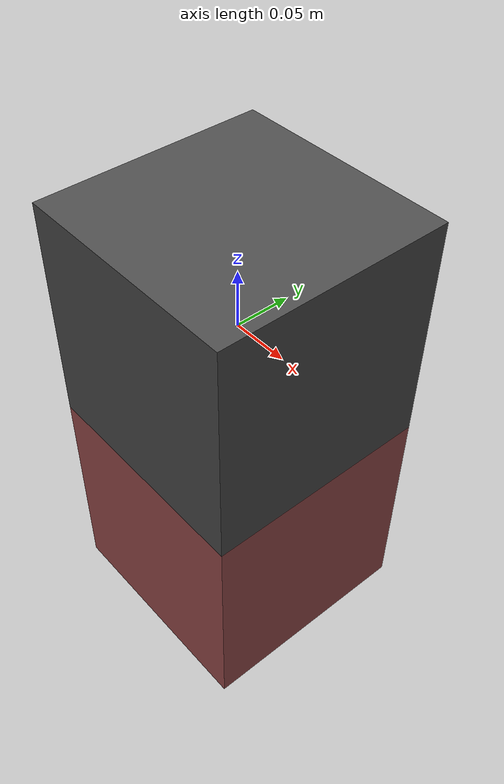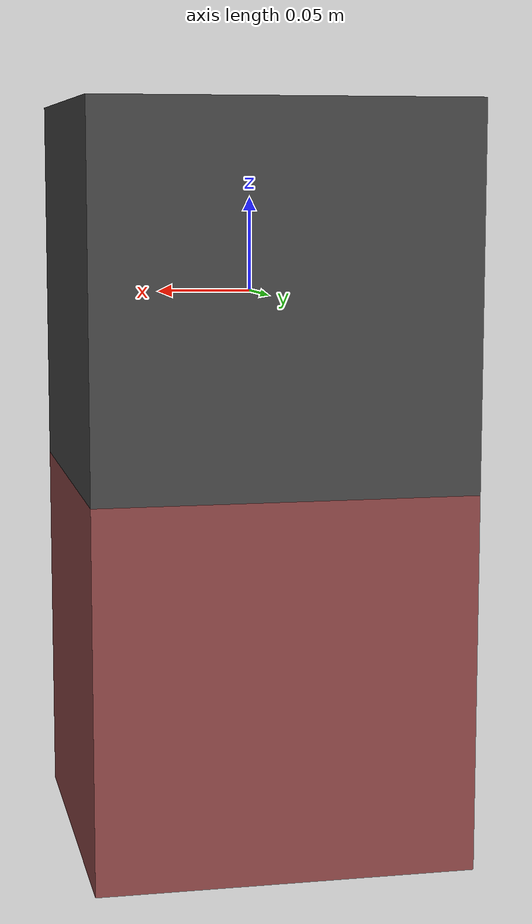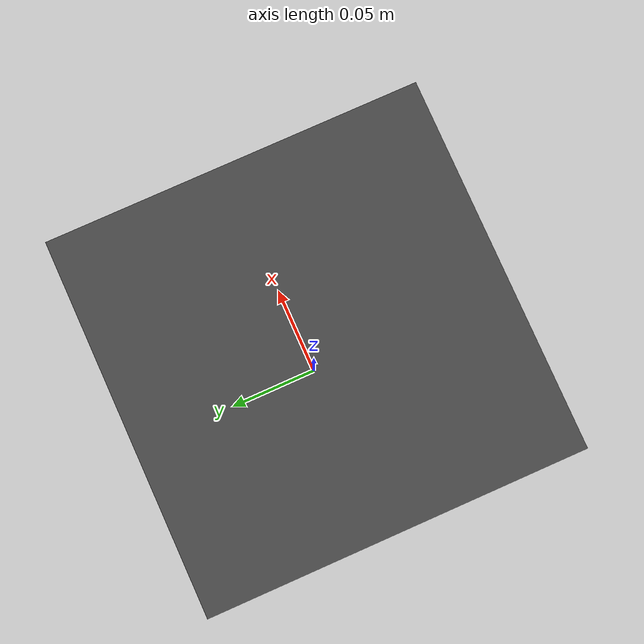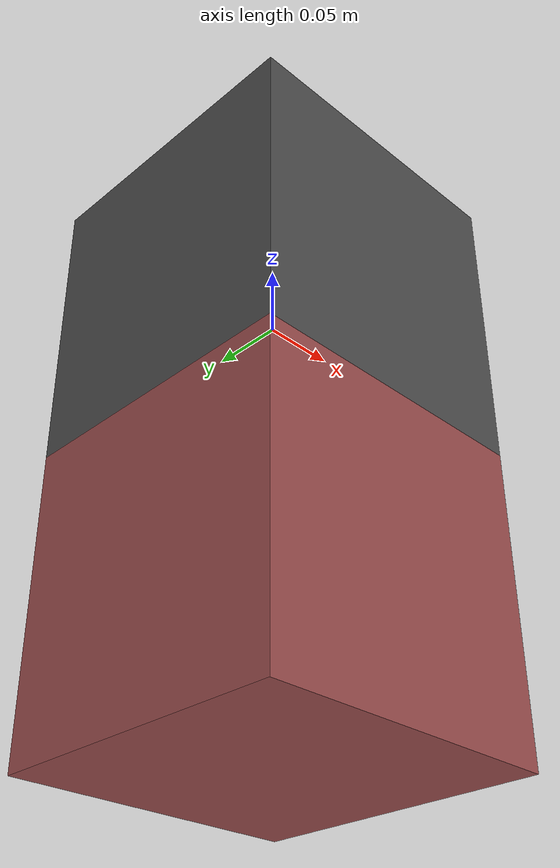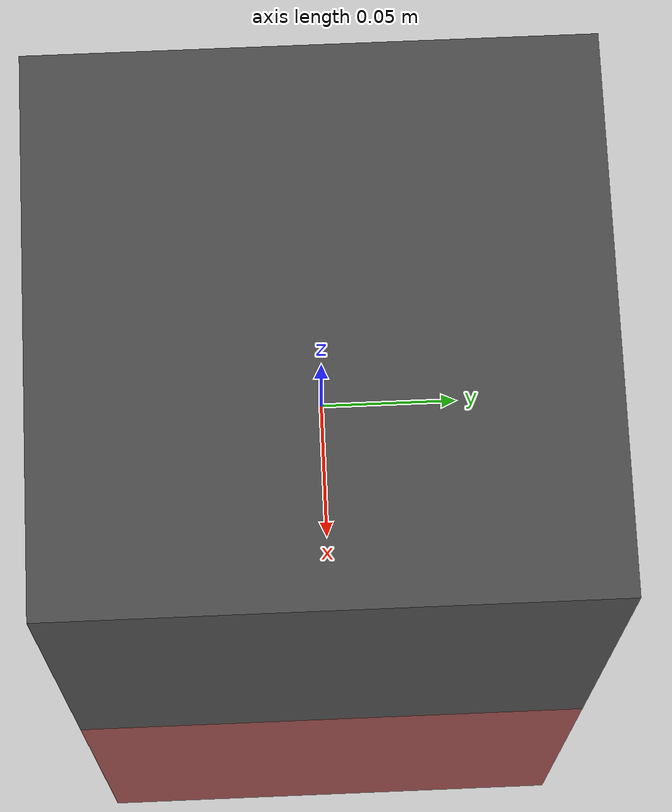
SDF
<?xml version="1.0"?>
<sdf version="1.7">
  <model name="simple_gripper">
    <pose>0 0 0 0 0 0</pose>
    <joint name="translate_joint" type="prismatic">
      <parent>world</parent>
      <child>body</child>
      <axis>
        <xyz expressed_in="__model__">0 1 0</xyz>
      </axis>
      <drake:controller_gains p='100000.0' d='1.0' />
    </joint>
    <link name="body">
      <pose>0 0 0 0 0 0</pose>
      <inertial>
        <mass>20</mass>
        <inertia>
          <ixx>0.1333333</ixx>
          <ixy>0</ixy>
          <ixz>0</ixz>
          <iyy>0.1333333</iyy>
          <iyz>0</iyz>
          <izz>0.1333333</izz>
        </inertia>
      </inertial>
      <visual name="visual">
        <geometry>
          <box>
            <size>0.2 0.2 0.2</size>
          </box>
        </geometry>
        <material>
          <diffuse>0.3 0.3 0.3 0.9</diffuse>
        </material>
      </visual>
    </link>
    <link name="gripper">
      <pose>0 0 -0.2 0 0 0</pose>
      <inertial>
        <mass>20</mass>
        <inertia>
          <ixx>0.1333333</ixx>
          <ixy>0</ixy>
          <ixz>0</ixz>
          <iyy>0.1333333</iyy>
          <iyz>0</iyz>
          <izz>0.1333333</izz>
        </inertia>
      </inertial>
      <visual name="visual">
        <geometry>
          <box>
            <size>0.2 0.2 0.2</size>
          </box>
        </geometry>
        <material>
          <diffuse>0.6 0.3 0.3 0.9</diffuse>
        </material>
      </visual>
    </link>
    <joint name="weld" type="fixed">
      <child>gripper</child>
      <parent>body</parent>
    </joint>
  </model>
</sdf>
